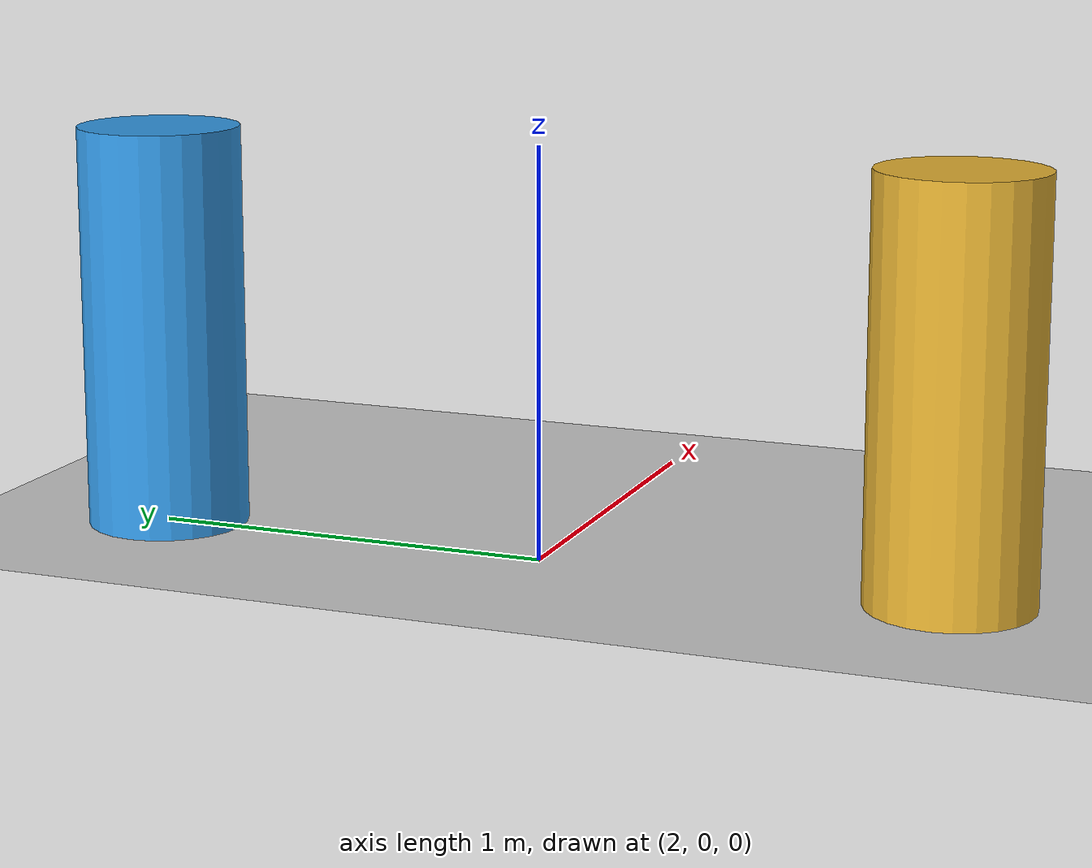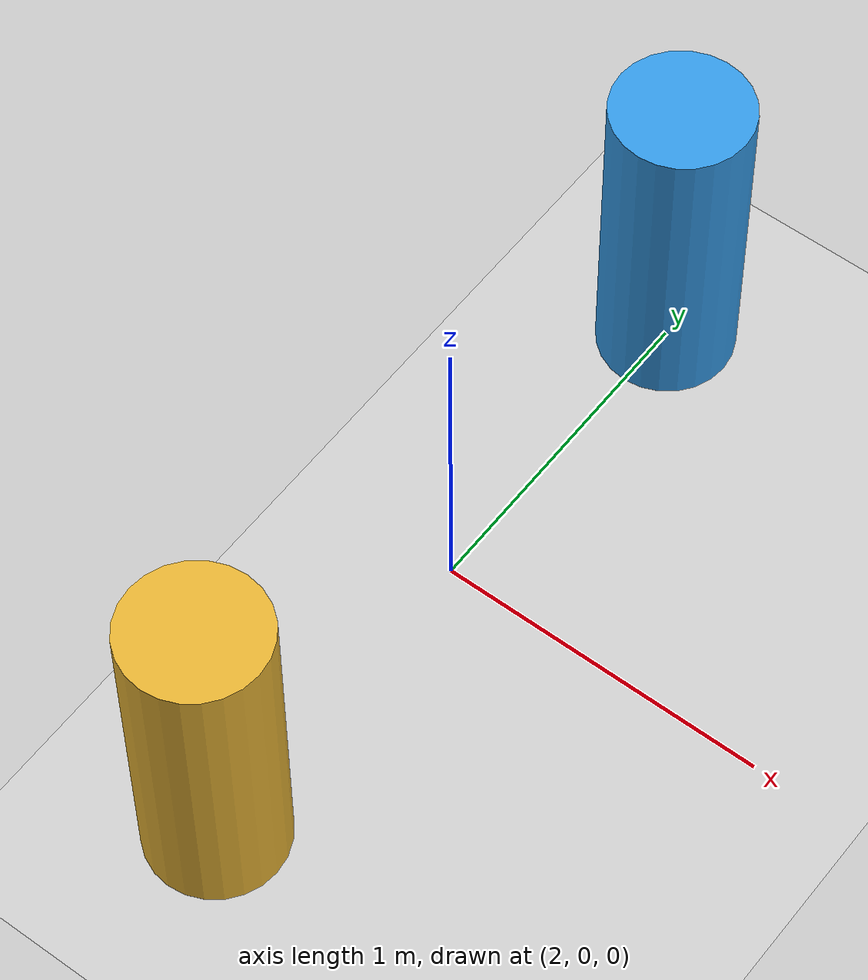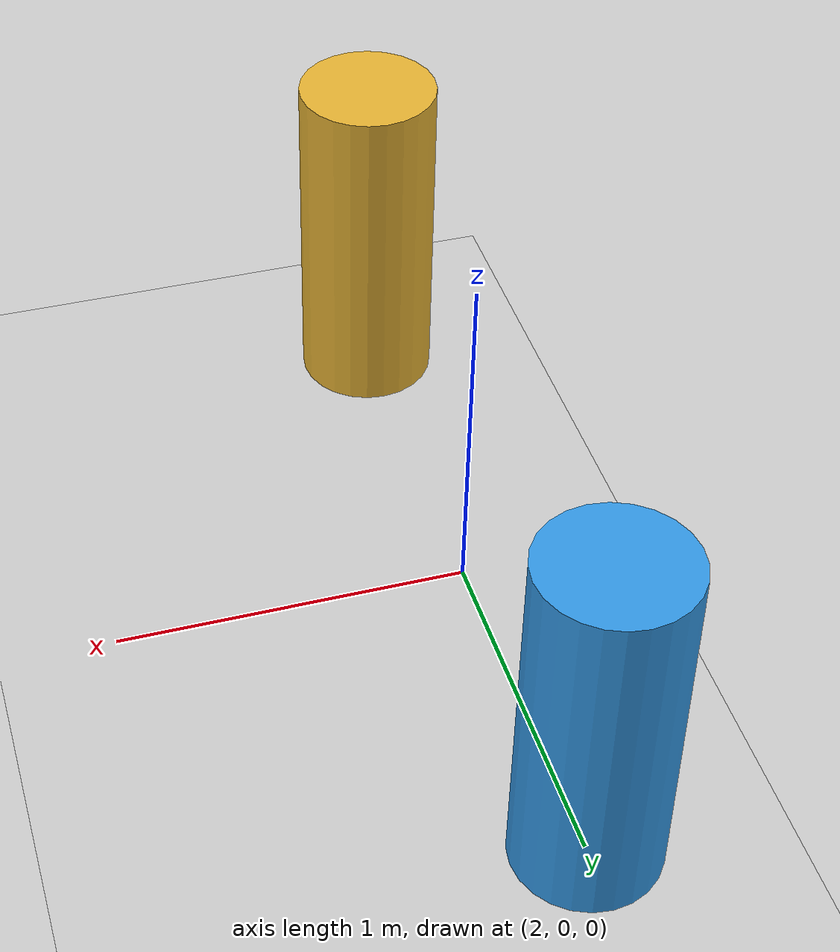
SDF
<?xml version="1.0" ?>
<sdf version="1.10">
  <world name="diffdrive_world">
    <physics name="1ms" type="ignored">
      <max_step_size>0.001</max_step_size>
      <real_time_factor>1.0</real_time_factor>
    </physics>

    <plugin filename="gz-sim-physics-system" name="gz::sim::systems::Physics"/>
    <plugin filename="gz-sim-user-commands-system" name="gz::sim::systems::UserCommands"/>
    <plugin filename="gz-sim-scene-broadcaster-system" name="gz::sim::systems::SceneBroadcaster"/>
    <plugin filename="gz-sim-imu-system" name="gz::sim::systems::Imu"/>

    <light type="directional" name="sun">
      <cast_shadows>true</cast_shadows>
      <pose>0 0 10 0 0 0</pose>
      <diffuse>1 1 1 1</diffuse>
      <specular>0.2 0.2 0.2 1</specular>
      <direction>-0.5 0.1 -0.9</direction>
    </light>

    <model name="ground_plane">
      <static>true</static>
      <link name="link">
        <collision name="collision">
          <geometry><plane><normal>0 0 1</normal><size>100 100</size></plane></geometry>
        </collision>
        <visual name="visual">
          <geometry><plane><normal>0 0 1</normal><size>100 100</size></plane></geometry>
          <material>
            <ambient>0.8 0.8 0.8 1</ambient>
            <diffuse>0.8 0.8 0.8 1</diffuse>
          </material>
        </visual>
      </link>
    </model>

    <!-- A couple of obstacles to drive around. -->
    <model name="pillar_a">
      <static>true</static>
      <pose>2 1 0.5 0 0 0</pose>
      <link name="link">
        <collision name="collision"><geometry><cylinder><radius>0.2</radius><length>1</length></cylinder></geometry></collision>
        <visual name="visual">
          <geometry><cylinder><radius>0.2</radius><length>1</length></cylinder></geometry>
          <material><ambient>0.2 0.6 0.9 1</ambient><diffuse>0.2 0.6 0.9 1</diffuse></material>
        </visual>
      </link>
    </model>
    <model name="pillar_b">
      <static>true</static>
      <pose>2 -1 0.5 0 0 0</pose>
      <link name="link">
        <collision name="collision"><geometry><cylinder><radius>0.2</radius><length>1</length></cylinder></geometry></collision>
        <visual name="visual">
          <geometry><cylinder><radius>0.2</radius><length>1</length></cylinder></geometry>
          <material><ambient>0.9 0.7 0.2 1</ambient><diffuse>0.9 0.7 0.2 1</diffuse></material>
        </visual>
      </link>
    </model>
  </world>
</sdf>
